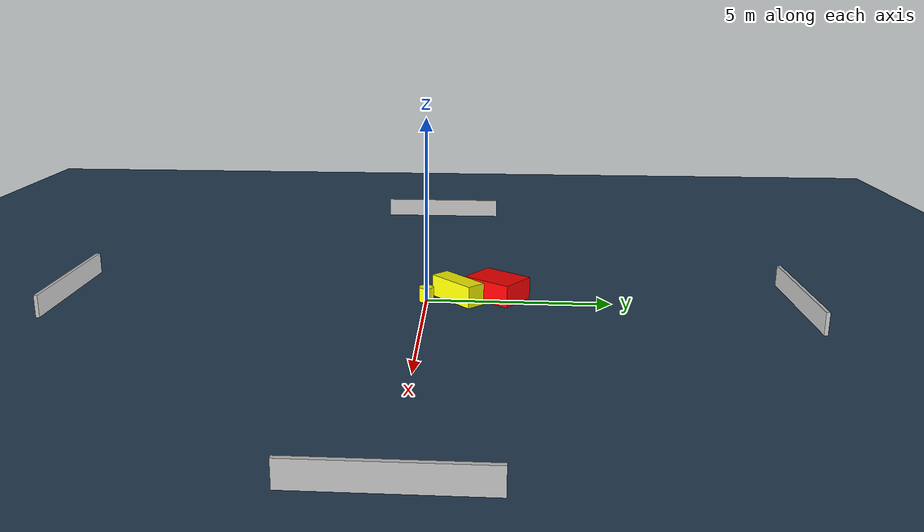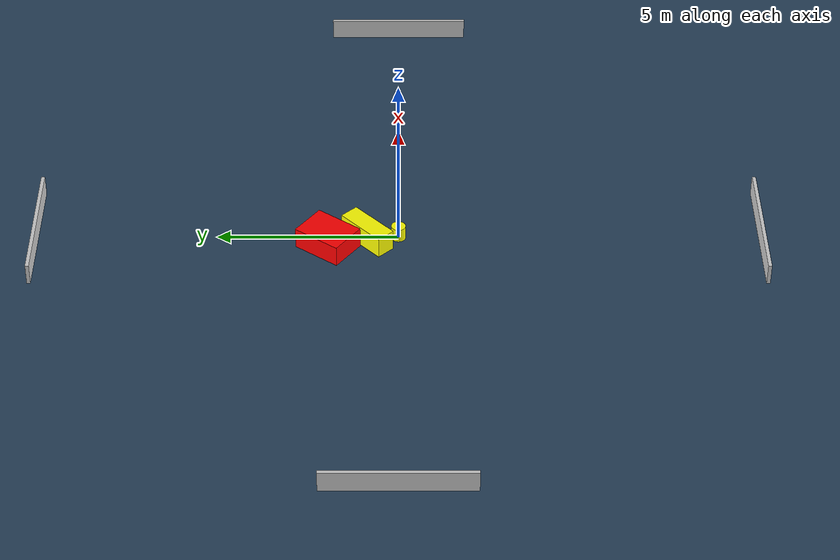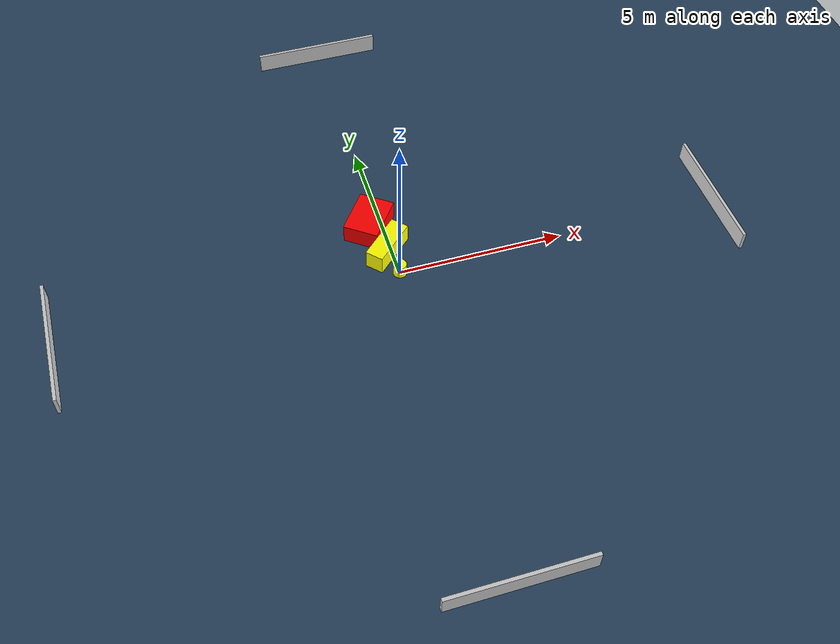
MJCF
<?xml version="1.0" ?>
<mujoco model="generated_environment">
  <option timestep="0.01" integrator="RK4" cone="elliptic"/>
  <default>
    <geom density="1"/>
  </default>
  <asset>
    <texture builtin="gradient" height="3072" name="skybox" rgb1="0.3 0.5 0.7" rgb2="0 0 0" type="skybox" width="512"/>
    <texture builtin="checker" height="300" name="groundplane" rgb1="0.2 0.3 0.4" rgb2="0.1 0.2 0.3" type="2d" width="300"/>
    <material name="groundplane" reflectance="0.2" texrepeat="5 5" texture="groundplane"/>
  </asset>
  <worldbody>
    <light dir="0 0 -1" directional="true" pos="0 0 1.5"/>
    <geom condim="3" friction="0.5 0.005 0.001" material="groundplane" name="floor" pos="0 0 0" size="0 0 0.05" type="plane"/>
    <body name="walls">
      <geom name="wall_1" condim="4" pos="-10.0 0.0 0.3" rgba="0.800000011920929 0.800000011920929 0.800000011920929 1.0" size="0.05 2.0 0.3" type="box"/>
      <geom name="wall_2" condim="4" pos="10.0 0.0 0.3" rgba="0.800000011920929 0.800000011920929 0.800000011920929 1.0" size="0.05 2.0 0.3" type="box"/>
      <geom name="wall_3" condim="4" pos="0.0 -10.0 0.3" rgba="0.800000011920929 0.800000011920929 0.800000011920929 1.0" size="2.0 0.05 0.3" type="box"/>
      <geom name="wall_4" condim="4" pos="0.0 10.0 0.3" rgba="0.800000011920929 0.800000011920929 0.800000011920929 1.0" size="2.0 0.05 0.3" type="box"/>
    </body>
    <body name="robot">
      <joint name="joint_x" type="slide" pos="0 0 0" axis="1 0 0"/>
      <joint name="joint_y" type="slide" pos="0 0 0" axis="0 1 0"/>
      <geom name="robot" type="cylinder" pos="0.0 0.0 0.2" size="0.2 0.2 0.0" mass="5.0" friction="1.0 0.005 0.0001" condim="4" rgba="1.0 1.0 0.0 1.0"/>
    </body>
    <body name="obstacle_1_movable">
      <geom name="obstacle_1_movable" condim="4" pos="-0.1340911536902168 0.8559491769835436 0.3" euler="0 0 133.32207315413982" friction="0.0 0.005 0.001" rgba="1.0 1.0 0.0 1.0" size="0.27478509820129565 0.7472072933835814 0.3" type="box" mass="0.1"/>
      <joint type="free"/>
    </body>
    <body name="obstacle_2_static">
      <geom name="obstacle_2_static" condim="4" pos="-0.3898243251724819 1.939342185277795 0.3" euler="0 0 53.53721468266286" friction="0.0 0.005 0.001" rgba="1.0 0.0 0.0 1.0" size="0.7080815916659278 0.5364487714188801 0.3" type="box"/>
    </body>
  </worldbody>
  <actuator>
    <motor name="actuator_x" joint="joint_x" gear="1" ctrlrange="-1 1"/>
    <motor name="actuator_y" joint="joint_y" gear="1" ctrlrange="-1 1"/>
  </actuator>
</mujoco>
